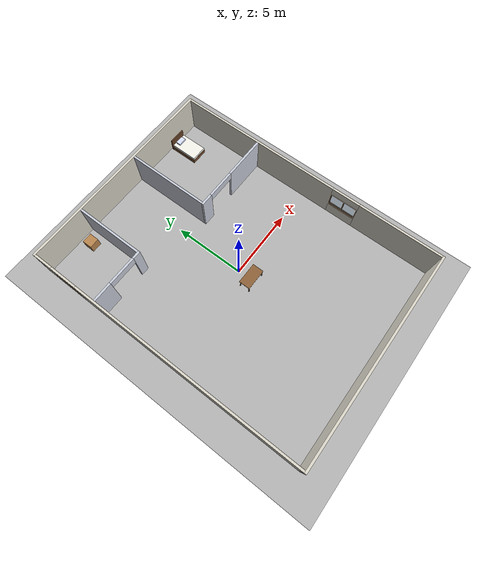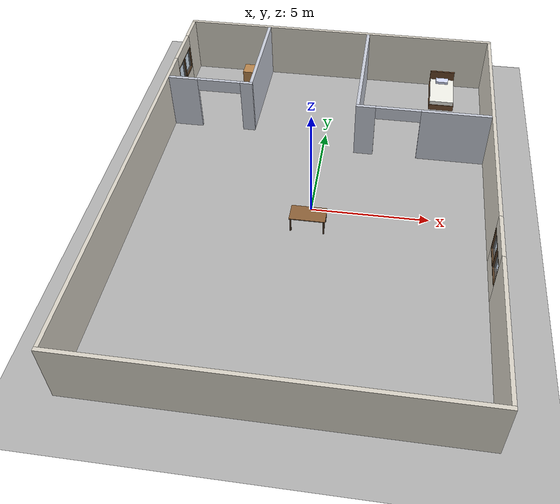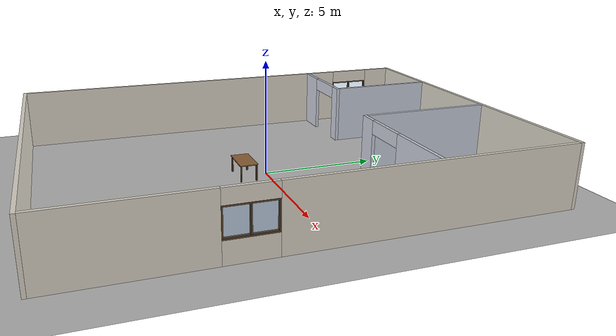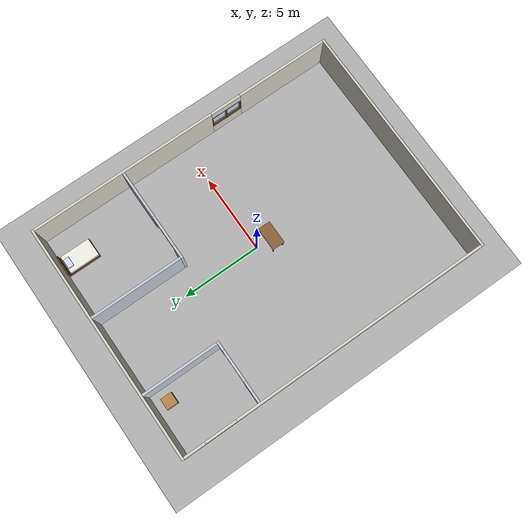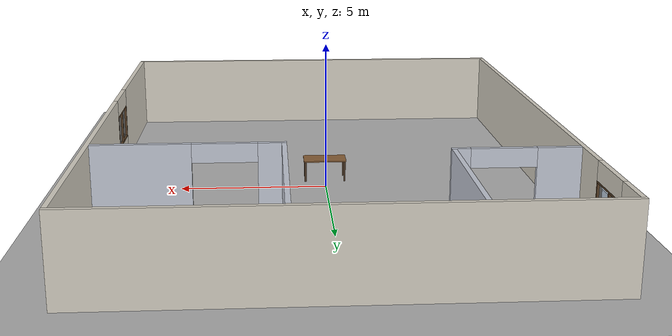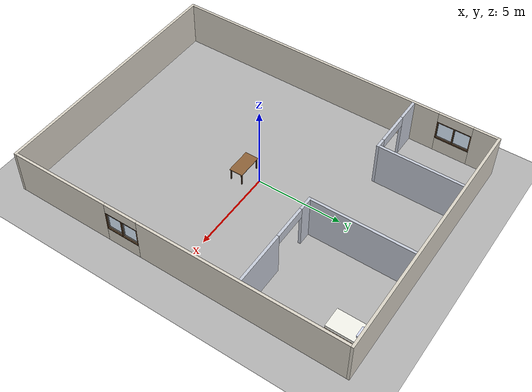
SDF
<?xml version="1.0" ?>
<!-- GENERATED by scripts/generate_world.py from scripts/world_layout.py.
     Do not edit by hand: change world_layout.py and regenerate. -->
<sdf version="1.6">
  <world name="semantic_indoor_world">
    <physics name="default_physics" default="1" type="ode">
      <max_step_size>0.002</max_step_size>
      <real_time_factor>1</real_time_factor>
      <real_time_update_rate>500</real_time_update_rate>
      <ode>
        <solver>
          <type>quick</type>
          <iters>100</iters>
          <sor>1.0</sor>
          <use_dynamic_moi_rescaling>false</use_dynamic_moi_rescaling>
        </solver>
      </ode>
    </physics>
    <gui fullscreen="0">
      <camera name="user_camera">
        <pose>0 -17 19 0 0.85 1.5708</pose>
        <view_controller>orbit</view_controller>
      </camera>
    </gui>
    <scene><ambient>0.5 0.5 0.5 1</ambient><shadows>true</shadows></scene>
    <light name="sun" type="directional">
      <cast_shadows>true</cast_shadows>
      <pose>0 0 10 0 0 0</pose>
      <diffuse>0.85 0.85 0.85 1</diffuse>
      <specular>0.2 0.2 0.2 1</specular>
      <direction>-0.4 0.2 -0.9</direction>
    </light>
    <model name="ground_plane">
      <static>true</static>
      <link name="link">
        <collision name="collision">
          <geometry><plane><normal>0 0 1</normal><size>40 40</size></plane></geometry>
          <surface><friction><ode><mu>100</mu><mu2>50</mu2></ode></friction></surface>
        </collision>
        <visual name="visual">
          <cast_shadows>false</cast_shadows>
          <geometry><plane><normal>0 0 1</normal><size>40 40</size></plane></geometry>
          <material><ambient>0.6 0.6 0.6 1</ambient><diffuse>0.7 0.7 0.7 1</diffuse></material>
        </visual>
      </link>
    </model>

    <model name="outer_walls">
      <static>true</static>
      <pose>0 0 0 0 0 0</pose>
      <link name="link">
        <collision name="north_collision">
          <pose>0 9.925 1.35 0 0 0</pose>
          <geometry><box><size>15 0.15 2.7</size></box></geometry>
        </collision>
        <visual name="north_visual">
          <pose>0 9.925 1.35 0 0 0</pose>
          <geometry><box><size>15 0.15 2.7</size></box></geometry>
          <material>
            <ambient>0.85 0.83 0.78 1</ambient>
            <diffuse>0.85 0.83 0.78 1</diffuse>
            <specular>0.1 0.1 0.1 1</specular>
          </material>
        </visual>
        <collision name="south_collision">
          <pose>0 -9.925 1.35 0 0 0</pose>
          <geometry><box><size>15 0.15 2.7</size></box></geometry>
        </collision>
        <visual name="south_visual">
          <pose>0 -9.925 1.35 0 0 0</pose>
          <geometry><box><size>15 0.15 2.7</size></box></geometry>
          <material>
            <ambient>0.85 0.83 0.78 1</ambient>
            <diffuse>0.85 0.83 0.78 1</diffuse>
            <specular>0.1 0.1 0.1 1</specular>
          </material>
        </visual>
        <collision name="west_a_collision">
          <pose>-7.425 -1.675 1.35 0 0 0</pose>
          <geometry><box><size>0.15 16.35 2.7</size></box></geometry>
        </collision>
        <visual name="west_a_visual">
          <pose>-7.425 -1.675 1.35 0 0 0</pose>
          <geometry><box><size>0.15 16.35 2.7</size></box></geometry>
          <material>
            <ambient>0.85 0.83 0.78 1</ambient>
            <diffuse>0.85 0.83 0.78 1</diffuse>
            <specular>0.1 0.1 0.1 1</specular>
          </material>
        </visual>
        <collision name="west_b_collision">
          <pose>-7.425 9.175 1.35 0 0 0</pose>
          <geometry><box><size>0.15 1.35 2.7</size></box></geometry>
        </collision>
        <visual name="west_b_visual">
          <pose>-7.425 9.175 1.35 0 0 0</pose>
          <geometry><box><size>0.15 1.35 2.7</size></box></geometry>
          <material>
            <ambient>0.85 0.83 0.78 1</ambient>
            <diffuse>0.85 0.83 0.78 1</diffuse>
            <specular>0.1 0.1 0.1 1</specular>
          </material>
        </visual>
        <collision name="west_sill_collision">
          <pose>-7.425 7.5 0.45 0 0 0</pose>
          <geometry><box><size>0.15 2 0.9</size></box></geometry>
        </collision>
        <visual name="west_sill_visual">
          <pose>-7.425 7.5 0.45 0 0 0</pose>
          <geometry><box><size>0.15 2 0.9</size></box></geometry>
          <material>
            <ambient>0.85 0.83 0.78 1</ambient>
            <diffuse>0.85 0.83 0.78 1</diffuse>
            <specular>0.1 0.1 0.1 1</specular>
          </material>
        </visual>
        <collision name="west_head_collision">
          <pose>-7.425 7.5 2.4 0 0 0</pose>
          <geometry><box><size>0.15 2 0.6</size></box></geometry>
        </collision>
        <visual name="west_head_visual">
          <pose>-7.425 7.5 2.4 0 0 0</pose>
          <geometry><box><size>0.15 2 0.6</size></box></geometry>
          <material>
            <ambient>0.85 0.83 0.78 1</ambient>
            <diffuse>0.85 0.83 0.78 1</diffuse>
            <specular>0.1 0.1 0.1 1</specular>
          </material>
        </visual>
        <collision name="east_a_collision">
          <pose>7.425 -6.925 1.35 0 0 0</pose>
          <geometry><box><size>0.15 5.85 2.7</size></box></geometry>
        </collision>
        <visual name="east_a_visual">
          <pose>7.425 -6.925 1.35 0 0 0</pose>
          <geometry><box><size>0.15 5.85 2.7</size></box></geometry>
          <material>
            <ambient>0.85 0.83 0.78 1</ambient>
            <diffuse>0.85 0.83 0.78 1</diffuse>
            <specular>0.1 0.1 0.1 1</specular>
          </material>
        </visual>
        <collision name="east_b_collision">
          <pose>7.425 3.925 1.35 0 0 0</pose>
          <geometry><box><size>0.15 11.85 2.7</size></box></geometry>
        </collision>
        <visual name="east_b_visual">
          <pose>7.425 3.925 1.35 0 0 0</pose>
          <geometry><box><size>0.15 11.85 2.7</size></box></geometry>
          <material>
            <ambient>0.85 0.83 0.78 1</ambient>
            <diffuse>0.85 0.83 0.78 1</diffuse>
            <specular>0.1 0.1 0.1 1</specular>
          </material>
        </visual>
        <collision name="east_sill_collision">
          <pose>7.425 -3 0.45 0 0 0</pose>
          <geometry><box><size>0.15 2 0.9</size></box></geometry>
        </collision>
        <visual name="east_sill_visual">
          <pose>7.425 -3 0.45 0 0 0</pose>
          <geometry><box><size>0.15 2 0.9</size></box></geometry>
          <material>
            <ambient>0.85 0.83 0.78 1</ambient>
            <diffuse>0.85 0.83 0.78 1</diffuse>
            <specular>0.1 0.1 0.1 1</specular>
          </material>
        </visual>
        <collision name="east_head_collision">
          <pose>7.425 -3 2.4 0 0 0</pose>
          <geometry><box><size>0.15 2 0.6</size></box></geometry>
        </collision>
        <visual name="east_head_visual">
          <pose>7.425 -3 2.4 0 0 0</pose>
          <geometry><box><size>0.15 2 0.6</size></box></geometry>
          <material>
            <ambient>0.85 0.83 0.78 1</ambient>
            <diffuse>0.85 0.83 0.78 1</diffuse>
            <specular>0.1 0.1 0.1 1</specular>
          </material>
        </visual>
      </link>
    </model>

    <model name="small_room_walls">
      <static>true</static>
      <pose>0 0 0 0 0 0</pose>
      <link name="link">
        <collision name="south_a_collision">
          <pose>-6.675 5 1.35 0 0 0</pose>
          <geometry><box><size>1.35 0.15 2.7</size></box></geometry>
        </collision>
        <visual name="south_a_visual">
          <pose>-6.675 5 1.35 0 0 0</pose>
          <geometry><box><size>1.35 0.15 2.7</size></box></geometry>
          <material>
            <ambient>0.78 0.8 0.85 1</ambient>
            <diffuse>0.78 0.8 0.85 1</diffuse>
            <specular>0.1 0.1 0.1 1</specular>
          </material>
        </visual>
        <collision name="south_b_collision">
          <pose>-3.7125 5 1.35 0 0 0</pose>
          <geometry><box><size>0.575 0.15 2.7</size></box></geometry>
        </collision>
        <visual name="south_b_visual">
          <pose>-3.7125 5 1.35 0 0 0</pose>
          <geometry><box><size>0.575 0.15 2.7</size></box></geometry>
          <material>
            <ambient>0.78 0.8 0.85 1</ambient>
            <diffuse>0.78 0.8 0.85 1</diffuse>
            <specular>0.1 0.1 0.1 1</specular>
          </material>
        </visual>
        <collision name="south_lintel_collision">
          <pose>-5 5 2.4 0 0 0</pose>
          <geometry><box><size>2 0.15 0.6</size></box></geometry>
        </collision>
        <visual name="south_lintel_visual">
          <pose>-5 5 2.4 0 0 0</pose>
          <geometry><box><size>2 0.15 0.6</size></box></geometry>
          <material>
            <ambient>0.78 0.8 0.85 1</ambient>
            <diffuse>0.78 0.8 0.85 1</diffuse>
            <specular>0.1 0.1 0.1 1</specular>
          </material>
        </visual>
        <collision name="east_collision">
          <pose>-3.5 7.4625 1.35 0 0 0</pose>
          <geometry><box><size>0.15 4.775 2.7</size></box></geometry>
        </collision>
        <visual name="east_visual">
          <pose>-3.5 7.4625 1.35 0 0 0</pose>
          <geometry><box><size>0.15 4.775 2.7</size></box></geometry>
          <material>
            <ambient>0.78 0.8 0.85 1</ambient>
            <diffuse>0.78 0.8 0.85 1</diffuse>
            <specular>0.1 0.1 0.1 1</specular>
          </material>
        </visual>
      </link>
    </model>

    <model name="large_room_walls">
      <static>true</static>
      <pose>0 0 0 0 0 0</pose>
      <link name="link">
        <collision name="south_a_collision">
          <pose>1.8625 4 1.35 0 0 0</pose>
          <geometry><box><size>0.875 0.15 2.7</size></box></geometry>
        </collision>
        <visual name="south_a_visual">
          <pose>1.8625 4 1.35 0 0 0</pose>
          <geometry><box><size>0.875 0.15 2.7</size></box></geometry>
          <material>
            <ambient>0.78 0.8 0.85 1</ambient>
            <diffuse>0.78 0.8 0.85 1</diffuse>
            <specular>0.1 0.1 0.1 1</specular>
          </material>
        </visual>
        <collision name="south_b_collision">
          <pose>5.825 4 1.35 0 0 0</pose>
          <geometry><box><size>3.05 0.15 2.7</size></box></geometry>
        </collision>
        <visual name="south_b_visual">
          <pose>5.825 4 1.35 0 0 0</pose>
          <geometry><box><size>3.05 0.15 2.7</size></box></geometry>
          <material>
            <ambient>0.78 0.8 0.85 1</ambient>
            <diffuse>0.78 0.8 0.85 1</diffuse>
            <specular>0.1 0.1 0.1 1</specular>
          </material>
        </visual>
        <collision name="south_lintel_collision">
          <pose>3.3 4 2.4 0 0 0</pose>
          <geometry><box><size>2 0.15 0.6</size></box></geometry>
        </collision>
        <visual name="south_lintel_visual">
          <pose>3.3 4 2.4 0 0 0</pose>
          <geometry><box><size>2 0.15 0.6</size></box></geometry>
          <material>
            <ambient>0.78 0.8 0.85 1</ambient>
            <diffuse>0.78 0.8 0.85 1</diffuse>
            <specular>0.1 0.1 0.1 1</specular>
          </material>
        </visual>
        <collision name="west_collision">
          <pose>1.5 6.9625 1.35 0 0 0</pose>
          <geometry><box><size>0.15 5.775 2.7</size></box></geometry>
        </collision>
        <visual name="west_visual">
          <pose>1.5 6.9625 1.35 0 0 0</pose>
          <geometry><box><size>0.15 5.775 2.7</size></box></geometry>
          <material>
            <ambient>0.78 0.8 0.85 1</ambient>
            <diffuse>0.78 0.8 0.85 1</diffuse>
            <specular>0.1 0.1 0.1 1</specular>
          </material>
        </visual>
      </link>
    </model>

    <model name="small_room_window">
      <static>true</static>
      <pose>-7.425 7.5 1.5 0 0 1.5708</pose>
      <link name="link">
        <collision name="frame_top_collision">
          <pose>0 0 0.57 0 0 0</pose>
          <geometry><box><size>2 0.15 0.06</size></box></geometry>
        </collision>
        <visual name="frame_top_visual">
          <pose>0 0 0.57 0 0 0</pose>
          <geometry><box><size>2 0.15 0.06</size></box></geometry>
          <material>
            <ambient>0.35 0.25 0.15 1</ambient>
            <diffuse>0.35 0.25 0.15 1</diffuse>
            <specular>0.1 0.1 0.1 1</specular>
          </material>
        </visual>
        <collision name="frame_bottom_collision">
          <pose>0 0 -0.57 0 0 0</pose>
          <geometry><box><size>2 0.15 0.06</size></box></geometry>
        </collision>
        <visual name="frame_bottom_visual">
          <pose>0 0 -0.57 0 0 0</pose>
          <geometry><box><size>2 0.15 0.06</size></box></geometry>
          <material>
            <ambient>0.35 0.25 0.15 1</ambient>
            <diffuse>0.35 0.25 0.15 1</diffuse>
            <specular>0.1 0.1 0.1 1</specular>
          </material>
        </visual>
        <collision name="frame_left_collision">
          <pose>-0.97 0 0 0 0 0</pose>
          <geometry><box><size>0.06 0.15 1.08</size></box></geometry>
        </collision>
        <visual name="frame_left_visual">
          <pose>-0.97 0 0 0 0 0</pose>
          <geometry><box><size>0.06 0.15 1.08</size></box></geometry>
          <material>
            <ambient>0.35 0.25 0.15 1</ambient>
            <diffuse>0.35 0.25 0.15 1</diffuse>
            <specular>0.1 0.1 0.1 1</specular>
          </material>
        </visual>
        <collision name="frame_right_collision">
          <pose>0.97 0 0 0 0 0</pose>
          <geometry><box><size>0.06 0.15 1.08</size></box></geometry>
        </collision>
        <visual name="frame_right_visual">
          <pose>0.97 0 0 0 0 0</pose>
          <geometry><box><size>0.06 0.15 1.08</size></box></geometry>
          <material>
            <ambient>0.35 0.25 0.15 1</ambient>
            <diffuse>0.35 0.25 0.15 1</diffuse>
            <specular>0.1 0.1 0.1 1</specular>
          </material>
        </visual>
        <collision name="frame_mullion_collision">
          <pose>0 0 0 0 0 0</pose>
          <geometry><box><size>0.06 0.15 1.08</size></box></geometry>
        </collision>
        <visual name="frame_mullion_visual">
          <pose>0 0 0 0 0 0</pose>
          <geometry><box><size>0.06 0.15 1.08</size></box></geometry>
          <material>
            <ambient>0.35 0.25 0.15 1</ambient>
            <diffuse>0.35 0.25 0.15 1</diffuse>
            <specular>0.1 0.1 0.1 1</specular>
          </material>
        </visual>
        <collision name="glass_collision">
          <pose>0 0 0 0 0 0</pose>
          <geometry><box><size>1.88 0.01 1.08</size></box></geometry>
        </collision>
        <visual name="glass_visual">
          <pose>0 0 0 0 0 0</pose>
          <geometry><box><size>1.88 0.01 1.08</size></box></geometry>
          <material>
            <ambient>0.55 0.75 0.95 0.35</ambient>
            <diffuse>0.55 0.75 0.95 0.35</diffuse>
            <specular>0.1 0.1 0.1 1</specular>
          </material>
          <transparency>0.65</transparency>
        </visual>
      </link>
    </model>

    <model name="living_room_window">
      <static>true</static>
      <pose>7.425 -3 1.5 0 0 1.5708</pose>
      <link name="link">
        <collision name="frame_top_collision">
          <pose>0 0 0.57 0 0 0</pose>
          <geometry><box><size>2 0.15 0.06</size></box></geometry>
        </collision>
        <visual name="frame_top_visual">
          <pose>0 0 0.57 0 0 0</pose>
          <geometry><box><size>2 0.15 0.06</size></box></geometry>
          <material>
            <ambient>0.35 0.25 0.15 1</ambient>
            <diffuse>0.35 0.25 0.15 1</diffuse>
            <specular>0.1 0.1 0.1 1</specular>
          </material>
        </visual>
        <collision name="frame_bottom_collision">
          <pose>0 0 -0.57 0 0 0</pose>
          <geometry><box><size>2 0.15 0.06</size></box></geometry>
        </collision>
        <visual name="frame_bottom_visual">
          <pose>0 0 -0.57 0 0 0</pose>
          <geometry><box><size>2 0.15 0.06</size></box></geometry>
          <material>
            <ambient>0.35 0.25 0.15 1</ambient>
            <diffuse>0.35 0.25 0.15 1</diffuse>
            <specular>0.1 0.1 0.1 1</specular>
          </material>
        </visual>
        <collision name="frame_left_collision">
          <pose>-0.97 0 0 0 0 0</pose>
          <geometry><box><size>0.06 0.15 1.08</size></box></geometry>
        </collision>
        <visual name="frame_left_visual">
          <pose>-0.97 0 0 0 0 0</pose>
          <geometry><box><size>0.06 0.15 1.08</size></box></geometry>
          <material>
            <ambient>0.35 0.25 0.15 1</ambient>
            <diffuse>0.35 0.25 0.15 1</diffuse>
            <specular>0.1 0.1 0.1 1</specular>
          </material>
        </visual>
        <collision name="frame_right_collision">
          <pose>0.97 0 0 0 0 0</pose>
          <geometry><box><size>0.06 0.15 1.08</size></box></geometry>
        </collision>
        <visual name="frame_right_visual">
          <pose>0.97 0 0 0 0 0</pose>
          <geometry><box><size>0.06 0.15 1.08</size></box></geometry>
          <material>
            <ambient>0.35 0.25 0.15 1</ambient>
            <diffuse>0.35 0.25 0.15 1</diffuse>
            <specular>0.1 0.1 0.1 1</specular>
          </material>
        </visual>
        <collision name="frame_mullion_collision">
          <pose>0 0 0 0 0 0</pose>
          <geometry><box><size>0.06 0.15 1.08</size></box></geometry>
        </collision>
        <visual name="frame_mullion_visual">
          <pose>0 0 0 0 0 0</pose>
          <geometry><box><size>0.06 0.15 1.08</size></box></geometry>
          <material>
            <ambient>0.35 0.25 0.15 1</ambient>
            <diffuse>0.35 0.25 0.15 1</diffuse>
            <specular>0.1 0.1 0.1 1</specular>
          </material>
        </visual>
        <collision name="glass_collision">
          <pose>0 0 0 0 0 0</pose>
          <geometry><box><size>1.88 0.01 1.08</size></box></geometry>
        </collision>
        <visual name="glass_visual">
          <pose>0 0 0 0 0 0</pose>
          <geometry><box><size>1.88 0.01 1.08</size></box></geometry>
          <material>
            <ambient>0.55 0.75 0.95 0.35</ambient>
            <diffuse>0.55 0.75 0.95 0.35</diffuse>
            <specular>0.1 0.1 0.1 1</specular>
          </material>
          <transparency>0.65</transparency>
        </visual>
      </link>
    </model>

    <model name="small_room_box">
      <static>true</static>
      <pose>-4.4 9 0 0 0 0</pose>
      <link name="link">
        <collision name="box_collision">
          <pose>0 0 0.35 0 0 0</pose>
          <geometry><box><size>0.7 0.7 0.7</size></box></geometry>
        </collision>
        <visual name="box_visual">
          <pose>0 0 0.35 0 0 0</pose>
          <geometry><box><size>0.7 0.7 0.7</size></box></geometry>
          <material>
            <ambient>0.72 0.52 0.3 1</ambient>
            <diffuse>0.72 0.52 0.3 1</diffuse>
            <specular>0.1 0.1 0.1 1</specular>
          </material>
        </visual>
      </link>
    </model>

    <model name="large_room_bed">
      <static>true</static>
      <pose>5.4 8.72 0 0 0 0</pose>
      <link name="link">
        <collision name="frame_collision">
          <pose>0 0 0.15 0 0 0</pose>
          <geometry><box><size>1.2 2 0.3</size></box></geometry>
        </collision>
        <visual name="frame_visual">
          <pose>0 0 0.15 0 0 0</pose>
          <geometry><box><size>1.2 2 0.3</size></box></geometry>
          <material>
            <ambient>0.45 0.3 0.18 1</ambient>
            <diffuse>0.45 0.3 0.18 1</diffuse>
            <specular>0.1 0.1 0.1 1</specular>
          </material>
        </visual>
        <collision name="mattress_collision">
          <pose>0 -0.03 0.4 0 0 0</pose>
          <geometry><box><size>1.14 1.9 0.2</size></box></geometry>
        </collision>
        <visual name="mattress_visual">
          <pose>0 -0.03 0.4 0 0 0</pose>
          <geometry><box><size>1.14 1.9 0.2</size></box></geometry>
          <material>
            <ambient>0.95 0.95 0.92 1</ambient>
            <diffuse>0.95 0.95 0.92 1</diffuse>
            <specular>0.1 0.1 0.1 1</specular>
          </material>
        </visual>
        <collision name="pillow_collision">
          <pose>0 0.7 0.56 0 0 0</pose>
          <geometry><box><size>0.6 0.35 0.12</size></box></geometry>
        </collision>
        <visual name="pillow_visual">
          <pose>0 0.7 0.56 0 0 0</pose>
          <geometry><box><size>0.6 0.35 0.12</size></box></geometry>
          <material>
            <ambient>0.85 0.88 1 1</ambient>
            <diffuse>0.85 0.88 1 1</diffuse>
            <specular>0.1 0.1 0.1 1</specular>
          </material>
        </visual>
        <collision name="headboard_collision">
          <pose>0 1.04 0.45 0 0 0</pose>
          <geometry><box><size>1.2 0.08 0.9</size></box></geometry>
        </collision>
        <visual name="headboard_visual">
          <pose>0 1.04 0.45 0 0 0</pose>
          <geometry><box><size>1.2 0.08 0.9</size></box></geometry>
          <material>
            <ambient>0.4 0.26 0.15 1</ambient>
            <diffuse>0.4 0.26 0.15 1</diffuse>
            <specular>0.1 0.1 0.1 1</specular>
          </material>
        </visual>
      </link>
    </model>

    <model name="living_room_table">
      <static>true</static>
      <pose>0 -1 0 0 0 0</pose>
      <link name="link">
        <collision name="top_collision">
          <pose>0 0 0.73 0 0 0</pose>
          <geometry><box><size>1.5 0.8 0.04</size></box></geometry>
        </collision>
        <visual name="top_visual">
          <pose>0 0 0.73 0 0 0</pose>
          <geometry><box><size>1.5 0.8 0.04</size></box></geometry>
          <material>
            <ambient>0.55 0.38 0.22 1</ambient>
            <diffuse>0.55 0.38 0.22 1</diffuse>
            <specular>0.1 0.1 0.1 1</specular>
          </material>
        </visual>
        <collision name="leg_1_collision">
          <pose>0.69 0.34 0.355 0 0 0</pose>
          <geometry><box><size>0.06 0.06 0.71</size></box></geometry>
        </collision>
        <visual name="leg_1_visual">
          <pose>0.69 0.34 0.355 0 0 0</pose>
          <geometry><box><size>0.06 0.06 0.71</size></box></geometry>
          <material>
            <ambient>0.3 0.22 0.15 1</ambient>
            <diffuse>0.3 0.22 0.15 1</diffuse>
            <specular>0.1 0.1 0.1 1</specular>
          </material>
        </visual>
        <collision name="leg_2_collision">
          <pose>0.69 -0.34 0.355 0 0 0</pose>
          <geometry><box><size>0.06 0.06 0.71</size></box></geometry>
        </collision>
        <visual name="leg_2_visual">
          <pose>0.69 -0.34 0.355 0 0 0</pose>
          <geometry><box><size>0.06 0.06 0.71</size></box></geometry>
          <material>
            <ambient>0.3 0.22 0.15 1</ambient>
            <diffuse>0.3 0.22 0.15 1</diffuse>
            <specular>0.1 0.1 0.1 1</specular>
          </material>
        </visual>
        <collision name="leg_3_collision">
          <pose>-0.69 0.34 0.355 0 0 0</pose>
          <geometry><box><size>0.06 0.06 0.71</size></box></geometry>
        </collision>
        <visual name="leg_3_visual">
          <pose>-0.69 0.34 0.355 0 0 0</pose>
          <geometry><box><size>0.06 0.06 0.71</size></box></geometry>
          <material>
            <ambient>0.3 0.22 0.15 1</ambient>
            <diffuse>0.3 0.22 0.15 1</diffuse>
            <specular>0.1 0.1 0.1 1</specular>
          </material>
        </visual>
        <collision name="leg_4_collision">
          <pose>-0.69 -0.34 0.355 0 0 0</pose>
          <geometry><box><size>0.06 0.06 0.71</size></box></geometry>
        </collision>
        <visual name="leg_4_visual">
          <pose>-0.69 -0.34 0.355 0 0 0</pose>
          <geometry><box><size>0.06 0.06 0.71</size></box></geometry>
          <material>
            <ambient>0.3 0.22 0.15 1</ambient>
            <diffuse>0.3 0.22 0.15 1</diffuse>
            <specular>0.1 0.1 0.1 1</specular>
          </material>
        </visual>
      </link>
    </model>
  </world>
</sdf>
